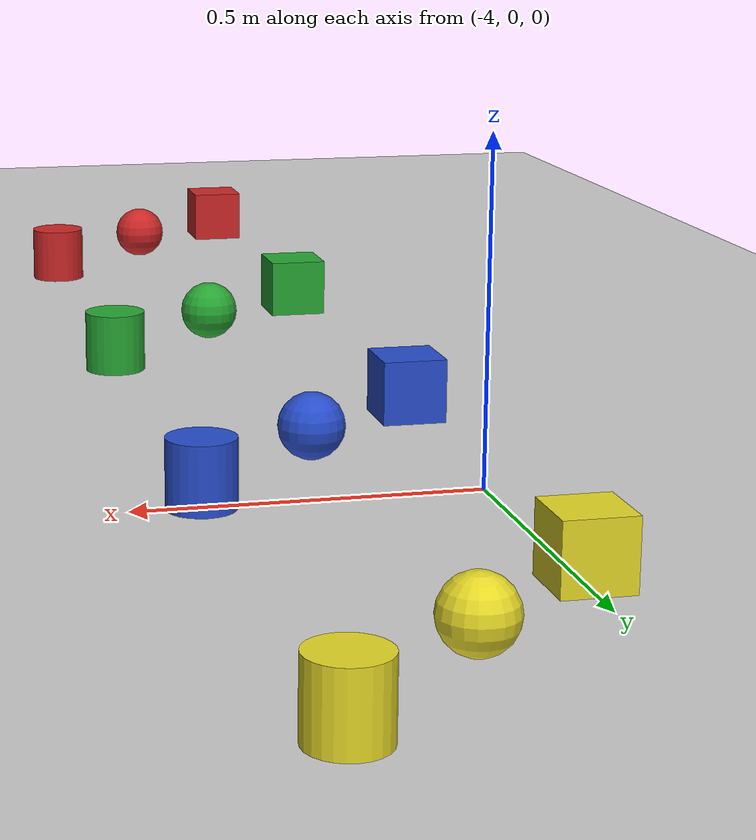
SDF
<sdf version="1.7">
 <world name="default">
  <light name="sun" type="directional">
   <cast_shadows>0</cast_shadows>
   <pose>0 0 10 0 -0 0</pose>
   <diffuse>0.8 0.8 0.8 1</diffuse>
   <specular>0.2 0.2 0.2 1</specular>
   <attenuation>
    <range>1000</range>
    <constant>0.9</constant>
    <linear>0.01</linear>
    <quadratic>0.001</quadratic>
   </attenuation>
   <direction>-0.5 0.1 -0.9</direction>
   <spot><inner_angle>0</inner_angle><outer_angle>0</outer_angle><falloff>0</falloff></spot>
  </light>
  <model name="ground_plane">
   <static>1</static>
   <link name="link">
    <collision name="collision">
     <geometry><plane><normal>0 0 1</normal><size>100 100</size></plane></geometry>
     <surface><friction><ode><mu>100</mu><mu2>50</mu2></ode></friction></surface>
    </collision>
    <visual name="visual">
     <cast_shadows>0</cast_shadows>
     <geometry><plane><normal>0 0 1</normal><size>100 100</size></plane></geometry>
     <material>
      <script><uri>file://media/materials/scripts/gazebo.material</uri><name>Gazebo/Grey</name></script>
     </material>
    </visual>
   </link>
  </model>
  <gravity>0 0 -9.8</gravity>
  <scene><ambient>0.4 0.4 0.4 1</ambient><background>0.7 0.7 0.7 1</background><shadows>1</shadows></scene>
  <magnetic_field>6e-06 2.3e-05 -4.2e-05</magnetic_field>
  <atmosphere type="adiabatic"/>
  <physics type="ode">
   <max_step_size>0.001</max_step_size>
   <real_time_factor>1</real_time_factor>
   <real_time_update_rate>1000</real_time_update_rate>
  </physics>
  <audio><device>default</device></audio>
  <spherical_coordinates>
   <surface_model>EARTH_WGS84</surface_model>
   <latitude_deg>0</latitude_deg>
   <longitude_deg>0</longitude_deg>
   <elevation>0</elevation>
   <heading_deg>0</heading_deg>
  </spherical_coordinates>
  <model name="unit_box_red_1">
   <pose>-4 -2 0.05 0 -0 0</pose>
   <static>0</static>
   <link name="link">
    <inertial>
     <mass>0.2</mass>
     <inertia><ixx>0.001</ixx><ixy>0</ixy><ixz>0</ixz><iyy>0.001</iyy><iyz>0</iyz><izz>0.001</izz></inertia>
    </inertial>
    <visual name="visual">
     <geometry><box><size>0.1 0.1 0.1</size></box></geometry>
     <material>
      <script><uri>file://media/materials/scripts/gazebo.material</uri><name>Gazebo/Red</name></script>
      <ambient>1 0 0 1</ambient>
      <diffuse>1 0 0 1</diffuse>
      <specular>0.1 0.1 0.1 1</specular>
      <emissive>0 0 0 1</emissive>
     </material>
    </visual>
    <collision name="collision"><geometry><box><size>0.1 0.1 0.1</size></box></geometry></collision>
   </link>
  </model>
  <model name="unit_sphere_red_1">
   <pose>-3.8 -1.8 0.05 0 -0 0</pose>
   <static>0</static>
   <link name="link">
    <inertial>
     <mass>0.2</mass>
     <inertia><ixx>0.001</ixx><ixy>0</ixy><ixz>0</ixz><iyy>0.001</iyy><iyz>0</iyz><izz>0.001</izz></inertia>
    </inertial>
    <visual name="visual">
     <geometry><sphere><radius>0.05</radius></sphere></geometry>
     <material>
      <script><uri>file://media/materials/scripts/gazebo.material</uri><name>Gazebo/Red</name></script>
      <ambient>1 0 0 1</ambient>
      <diffuse>1 0 0 1</diffuse>
      <specular>0.1 0.1 0.1 1</specular>
      <emissive>0 0 0 1</emissive>
     </material>
    </visual>
    <collision name="collision"><geometry><sphere><radius>0.05</radius></sphere></geometry></collision>
   </link>
  </model>
  <model name="unit_cylinder_red_1">
   <pose>-3.6 -1.6 0.049997 4e-06 4e-06 -0</pose>
   <static>0</static>
   <link name="link">
    <inertial>
     <mass>0.2</mass>
     <inertia><ixx>0.001</ixx><ixy>0</ixy><ixz>0</ixz><iyy>0.001</iyy><iyz>0</iyz><izz>0.001</izz></inertia>
    </inertial>
    <visual name="visual">
     <geometry><cylinder><radius>0.05</radius><length>0.1</length></cylinder></geometry>
     <material>
      <script><uri>file://media/materials/scripts/gazebo.material</uri><name>Gazebo/Red</name></script>
      <ambient>1 0 0 1</ambient>
      <diffuse>1 0 0 1</diffuse>
      <specular>0.1 0.1 0.1 1</specular>
      <emissive>0 0 0 1</emissive>
     </material>
    </visual>
    <collision name="collision">
     <geometry><cylinder><radius>0.05</radius><length>0.1</length></cylinder></geometry>
    </collision>
   </link>
  </model>
  <model name="unit_box_green_1">
   <pose>-4 -1.2 0.05 0 -0 0</pose>
   <static>0</static>
   <link name="link">
    <inertial>
     <mass>0.2</mass>
     <inertia><ixx>0.001</ixx><ixy>0</ixy><ixz>0</ixz><iyy>0.001</iyy><iyz>0</iyz><izz>0.001</izz></inertia>
    </inertial>
    <visual name="visual">
     <geometry><box><size>0.1 0.1 0.1</size></box></geometry>
     <material>
      <script><uri>file://media/materials/scripts/gazebo.material</uri><name>Gazebo/Green</name></script>
      <ambient>0 1 0 1</ambient>
      <diffuse>0 1 0 1</diffuse>
      <specular>0.1 0.1 0.1 1</specular>
      <emissive>0 0 0 1</emissive>
     </material>
    </visual>
    <collision name="collision"><geometry><box><size>0.1 0.1 0.1</size></box></geometry></collision>
   </link>
  </model>
  <model name="unit_sphere_green_1">
   <pose>-3.8 -1 0.05 0 -0 0</pose>
   <static>0</static>
   <link name="link">
    <inertial>
     <mass>0.2</mass>
     <inertia><ixx>0.001</ixx><ixy>0</ixy><ixz>0</ixz><iyy>0.001</iyy><iyz>0</iyz><izz>0.001</izz></inertia>
    </inertial>
    <visual name="visual">
     <geometry><sphere><radius>0.05</radius></sphere></geometry>
     <material>
      <script><uri>file://media/materials/scripts/gazebo.material</uri><name>Gazebo/Green</name></script>
      <ambient>0 1 0 1</ambient>
      <diffuse>0 1 0 1</diffuse>
      <specular>0.1 0.1 0.1 1</specular>
      <emissive>0 0 0 1</emissive>
     </material>
    </visual>
    <collision name="collision"><geometry><sphere><radius>0.05</radius></sphere></geometry></collision>
   </link>
  </model>
  <model name="unit_cylinder_green_1">
   <pose>-3.6 -0.8 0.049997 4e-06 4e-06 -0</pose>
   <static>0</static>
   <link name="link">
    <inertial>
     <mass>0.2</mass>
     <inertia><ixx>0.001</ixx><ixy>0</ixy><ixz>0</ixz><iyy>0.001</iyy><iyz>0</iyz><izz>0.001</izz></inertia>
    </inertial>
    <visual name="visual">
     <geometry><cylinder><radius>0.05</radius><length>0.1</length></cylinder></geometry>
     <material>
      <script><uri>file://media/materials/scripts/gazebo.material</uri><name>Gazebo/Green</name></script>
      <ambient>0 1 0 1</ambient>
      <diffuse>0 1 0 1</diffuse>
      <specular>0.1 0.1 0.1 1</specular>
      <emissive>0 0 0 1</emissive>
     </material>
    </visual>
    <collision name="collision">
     <geometry><cylinder><radius>0.05</radius><length>0.1</length></cylinder></geometry>
    </collision>
   </link>
  </model>
  <model name="unit_box_blue_1">
   <pose>-4 -0.4 0.05 0 -0 0</pose>
   <static>0</static>
   <link name="link">
    <inertial>
     <mass>0.2</mass>
     <inertia><ixx>0.001</ixx><ixy>0</ixy><ixz>0</ixz><iyy>0.001</iyy><iyz>0</iyz><izz>0.001</izz></inertia>
    </inertial>
    <visual name="visual">
     <geometry><box><size>0.1 0.1 0.1</size></box></geometry>
     <material>
      <script><uri>file://media/materials/scripts/gazebo.material</uri><name>Gazebo/Blue</name></script>
      <ambient>0 0 1 1</ambient>
      <diffuse>0 0 1 1</diffuse>
      <specular>0.1 0.1 0.1 1</specular>
      <emissive>0 0 0 1</emissive>
     </material>
    </visual>
    <collision name="collision"><geometry><box><size>0.1 0.1 0.1</size></box></geometry></collision>
   </link>
  </model>
  <model name="unit_sphere_blue_1">
   <pose>-3.8 -0.2 0.05 0 -0 0</pose>
   <static>0</static>
   <link name="link">
    <inertial>
     <mass>0.2</mass>
     <inertia><ixx>0.001</ixx><ixy>0</ixy><ixz>0</ixz><iyy>0.001</iyy><iyz>0</iyz><izz>0.001</izz></inertia>
    </inertial>
    <visual name="visual">
     <geometry><sphere><radius>0.05</radius></sphere></geometry>
     <material>
      <script><uri>file://media/materials/scripts/gazebo.material</uri><name>Gazebo/Blue</name></script>
      <ambient>0 0 1 1</ambient>
      <diffuse>0 0 1 1</diffuse>
      <specular>0.1 0.1 0.1 1</specular>
      <emissive>0 0 0 1</emissive>
     </material>
    </visual>
    <collision name="collision"><geometry><sphere><radius>0.05</radius></sphere></geometry></collision>
   </link>
  </model>
  <model name="unit_cylinder_blue_1">
   <pose>-3.6 -0 0.049997 4e-06 4e-06 -0</pose>
   <static>0</static>
   <link name="link">
    <inertial>
     <mass>0.2</mass>
     <inertia><ixx>0.001</ixx><ixy>0</ixy><ixz>0</ixz><iyy>0.001</iyy><iyz>0</iyz><izz>0.001</izz></inertia>
    </inertial>
    <visual name="visual">
     <geometry><cylinder><radius>0.05</radius><length>0.1</length></cylinder></geometry>
     <material>
      <script><uri>file://media/materials/scripts/gazebo.material</uri><name>Gazebo/Blue</name></script>
      <ambient>0 0 1 1</ambient>
      <diffuse>0 0 1 1</diffuse>
      <specular>0.1 0.1 0.1 1</specular>
      <emissive>0 0 0 1</emissive>
     </material>
    </visual>
    <collision name="collision">
     <geometry><cylinder><radius>0.05</radius><length>0.1</length></cylinder></geometry>
    </collision>
   </link>
  </model>
  <model name="unit_box_yellow_1">
   <pose>-4 0.4 0.05 0 -0 0</pose>
   <static>0</static>
   <link name="link">
    <inertial>
     <mass>0.2</mass>
     <inertia><ixx>0.001</ixx><ixy>0</ixy><ixz>0</ixz><iyy>0.001</iyy><iyz>0</iyz><izz>0.001</izz></inertia>
    </inertial>
    <visual name="visual">
     <geometry><box><size>0.1 0.1 0.1</size></box></geometry>
     <material>
      <script><uri>file://media/materials/scripts/gazebo.material</uri><name>Gazebo/Yellow</name></script>
      <ambient>1 1 0 1</ambient>
      <diffuse>1 1 0 1</diffuse>
      <specular>0.1 0.1 0.1 1</specular>
      <emissive>0 0 0 1</emissive>
     </material>
    </visual>
    <collision name="collision"><geometry><box><size>0.1 0.1 0.1</size></box></geometry></collision>
   </link>
  </model>
  <model name="unit_sphere_yellow_1">
   <pose>-3.8 0.6 0.05 0 -0 0</pose>
   <static>0</static>
   <link name="link">
    <inertial>
     <mass>0.2</mass>
     <inertia><ixx>0.001</ixx><ixy>0</ixy><ixz>0</ixz><iyy>0.001</iyy><iyz>0</iyz><izz>0.001</izz></inertia>
    </inertial>
    <visual name="visual">
     <geometry><sphere><radius>0.05</radius></sphere></geometry>
     <material>
      <script><uri>file://media/materials/scripts/gazebo.material</uri><name>Gazebo/Yellow</name></script>
      <ambient>1 1 0 1</ambient>
      <diffuse>1 1 0 1</diffuse>
      <specular>0.1 0.1 0.1 1</specular>
      <emissive>0 0 0 1</emissive>
     </material>
    </visual>
    <collision name="collision"><geometry><sphere><radius>0.05</radius></sphere></geometry></collision>
   </link>
  </model>
  <model name="unit_cylinder_yellow_1">
   <pose>-3.6 0.8 0.049997 4e-06 4e-06 -0</pose>
   <static>0</static>
   <link name="link">
    <inertial>
     <mass>0.2</mass>
     <inertia><ixx>0.001</ixx><ixy>0</ixy><ixz>0</ixz><iyy>0.001</iyy><iyz>0</iyz><izz>0.001</izz></inertia>
    </inertial>
    <visual name="visual">
     <geometry><cylinder><radius>0.05</radius><length>0.1</length></cylinder></geometry>
     <material>
      <script><uri>file://media/materials/scripts/gazebo.material</uri><name>Gazebo/Yellow</name></script>
      <ambient>1 1 0 1</ambient>
      <diffuse>1 1 0 1</diffuse>
      <specular>0.1 0.1 0.1 1</specular>
      <emissive>0 0 0 1</emissive>
     </material>
    </visual>
    <collision name="collision">
     <geometry><cylinder><radius>0.05</radius><length>0.1</length></cylinder></geometry>
    </collision>
   </link>
  </model>
 </world>
</sdf>
